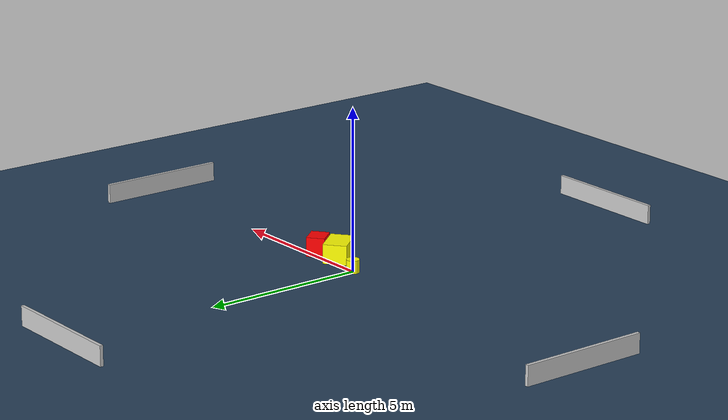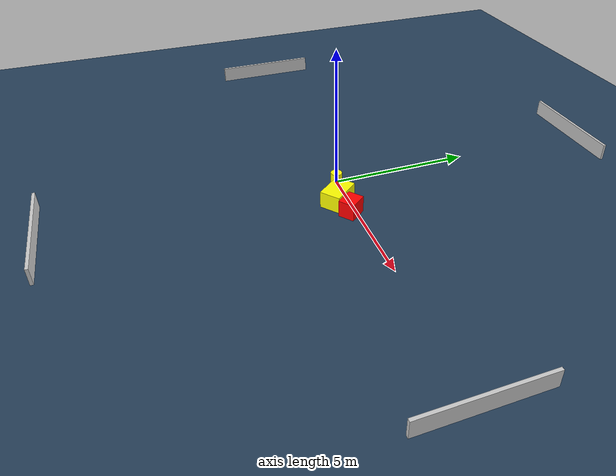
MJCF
<?xml version="1.0" ?>
<mujoco model="generated_environment">
  <option timestep="0.01" integrator="RK4" cone="elliptic"/>
  <default>
    <geom density="1"/>
  </default>
  <asset>
    <texture builtin="gradient" height="3072" name="skybox" rgb1="0.3 0.5 0.7" rgb2="0 0 0" type="skybox" width="512"/>
    <texture builtin="checker" height="300" name="groundplane" rgb1="0.2 0.3 0.4" rgb2="0.1 0.2 0.3" type="2d" width="300"/>
    <material name="groundplane" reflectance="0.2" texrepeat="5 5" texture="groundplane"/>
  </asset>
  <worldbody>
    <light dir="0 0 -1" directional="true" pos="0 0 1.5"/>
    <geom condim="3" friction="0.5 0.005 0.001" material="groundplane" name="floor" pos="0 0 0" size="0 0 0.05" type="plane"/>
    <body name="walls">
      <geom name="wall_1" condim="4" pos="-10.0 0.0 0.3" rgba="0.800000011920929 0.800000011920929 0.800000011920929 1.0" size="0.05 2.0 0.3" type="box"/>
      <geom name="wall_2" condim="4" pos="10.0 0.0 0.3" rgba="0.800000011920929 0.800000011920929 0.800000011920929 1.0" size="0.05 2.0 0.3" type="box"/>
      <geom name="wall_3" condim="4" pos="0.0 -10.0 0.3" rgba="0.800000011920929 0.800000011920929 0.800000011920929 1.0" size="2.0 0.05 0.3" type="box"/>
      <geom name="wall_4" condim="4" pos="0.0 10.0 0.3" rgba="0.800000011920929 0.800000011920929 0.800000011920929 1.0" size="2.0 0.05 0.3" type="box"/>
    </body>
    <body name="robot">
      <joint name="joint_x" type="slide" pos="0 0 0" axis="1 0 0"/>
      <joint name="joint_y" type="slide" pos="0 0 0" axis="0 1 0"/>
      <geom name="robot" type="cylinder" pos="0.0 0.0 0.2" size="0.2 0.2 0.0" mass="5.0" friction="1.0 0.005 0.0001" condim="4" rgba="1.0 1.0 0.0 1.0"/>
    </body>
    <body name="obstacle_1_movable">
      <geom name="obstacle_1_movable" condim="4" pos="1.1861309902095971 -0.38824972837653227 0.3" euler="0 0 129.11463725753256" friction="0.0 0.005 0.001" rgba="1.0 1.0 0.0 1.0" size="0.5263317235279528 0.36545690806000486 0.3" type="box" mass="0.1"/>
      <joint type="free"/>
    </body>
    <body name="obstacle_2_static">
      <geom name="obstacle_2_static" condim="4" pos="1.9425888494508903 -0.19249124032509335 0.3" euler="0 0 218.71069343679648" friction="0.0 0.005 0.001" rgba="1.0 0.0 0.0 1.0" size="0.27982599093720373 0.3288160269537122 0.3" type="box"/>
    </body>
  </worldbody>
  <actuator>
    <motor name="actuator_x" joint="joint_x" gear="1" ctrlrange="-1 1"/>
    <motor name="actuator_y" joint="joint_y" gear="1" ctrlrange="-1 1"/>
  </actuator>
</mujoco>
